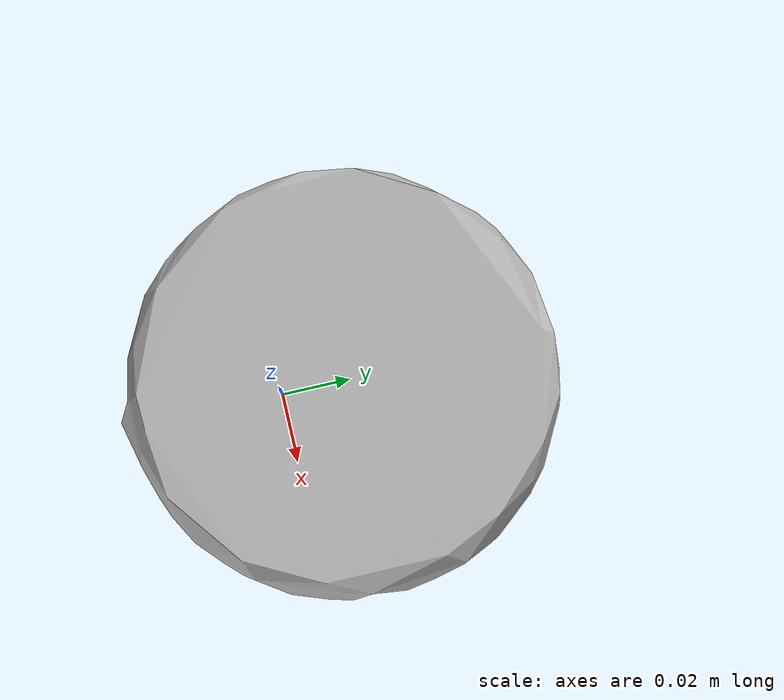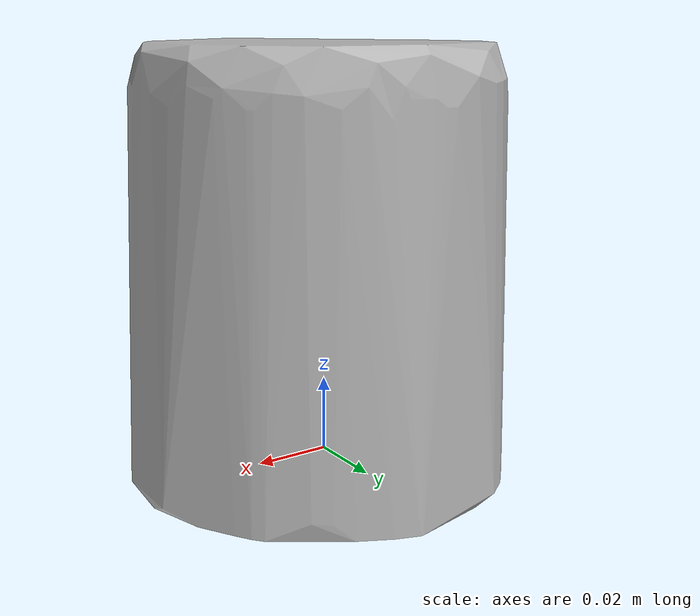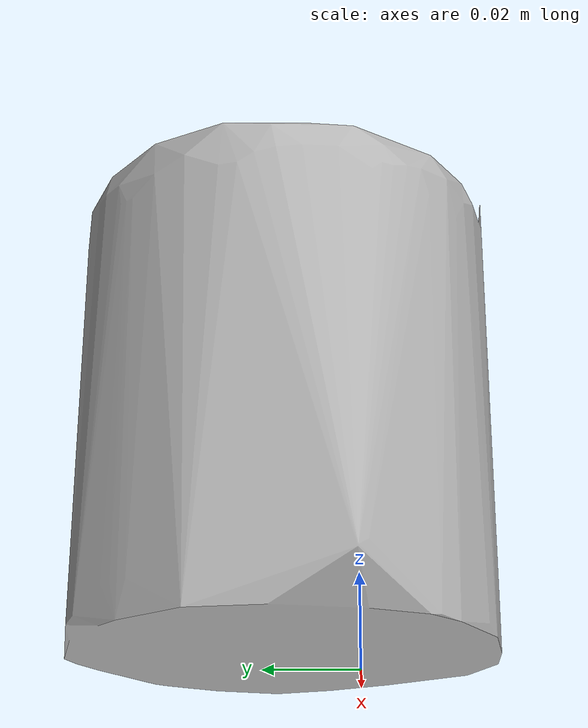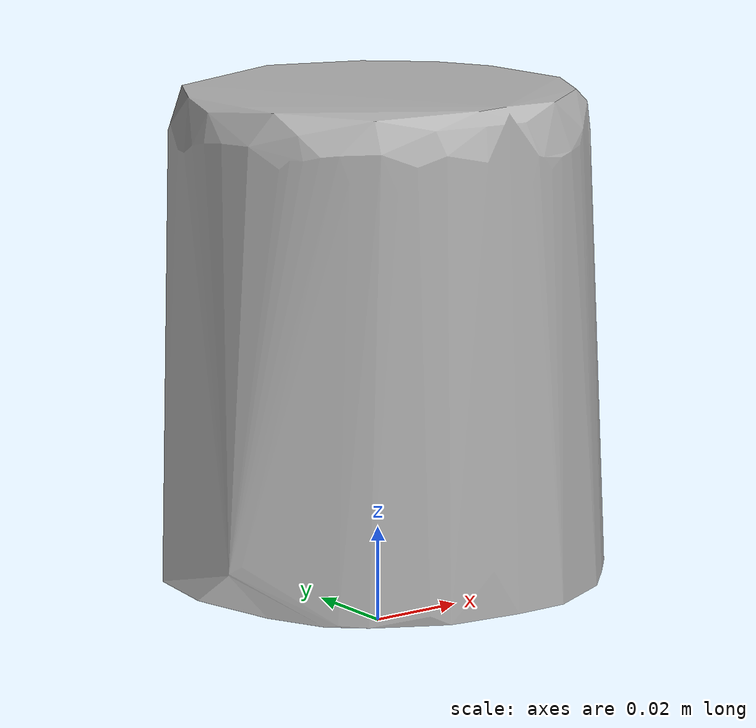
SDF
<?xml version='1.0'?>
<sdf version="1.4">
  <model name="progresso_new_england_clam_chowder">
    <static>false</static>
    <link name="link">
      <inertial>
        <pose>0.011706491801282148 0.015516223959093236 0.0559022219223109 3.1414801944901827 0.00034480931976144964 -1.7602627701179887</pose>
        <mass>0.06484913502237656</mass>
        <inertia>
          <ixx>8.949335587052157e-05</ixx>
          <ixy>5.776680817614776e-21</ixy>
          <ixz>-1.1825481758332732e-22</ixz>
          <iyy>8.832846972267276e-05</iyy>
          <iyz>2.0803622481137415e-23</iyz>
          <izz>6.539979933470645e-05</izz>
        </inertia>
      </inertial>
      <collision name="collision">
        <geometry>
          <mesh>
            <!-- Use a downsampled mesh for collisions -->
            <uri>model:///progresso_new_england_clam_chowder/progresso_new_england_clam_chowder_250_collision.obj</uri>
	        </mesh>
        </geometry>
        <surface>
      </surface>
      </collision>
      <visual name="visual">
        <geometry>
          <mesh>
            <uri>model:///progresso_new_england_clam_chowder/optimized_tsdf_texture_mapped_mesh.obj</uri>
	        </mesh>
        </geometry>
        <material>
          <script>
            <uri>model:///progresso_new_england_clam_chowder/progresso_new_england_clam_chowder.material</uri>
            <name>progresso_new_england_clam_chowder</name>
          </script>
        </material>
      </visual>
    </link>
  </model>
</sdf>
